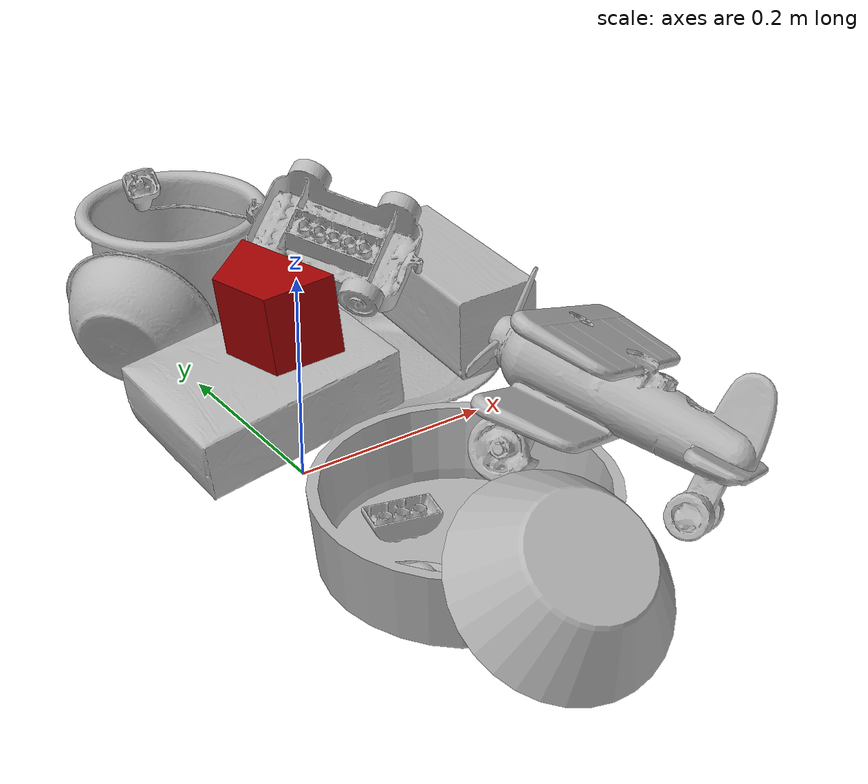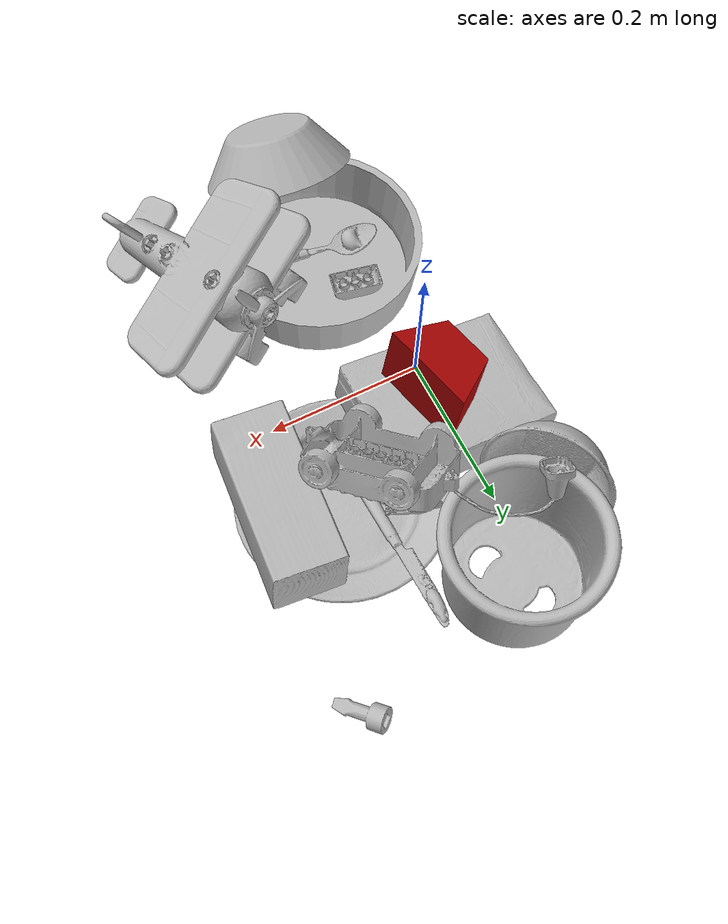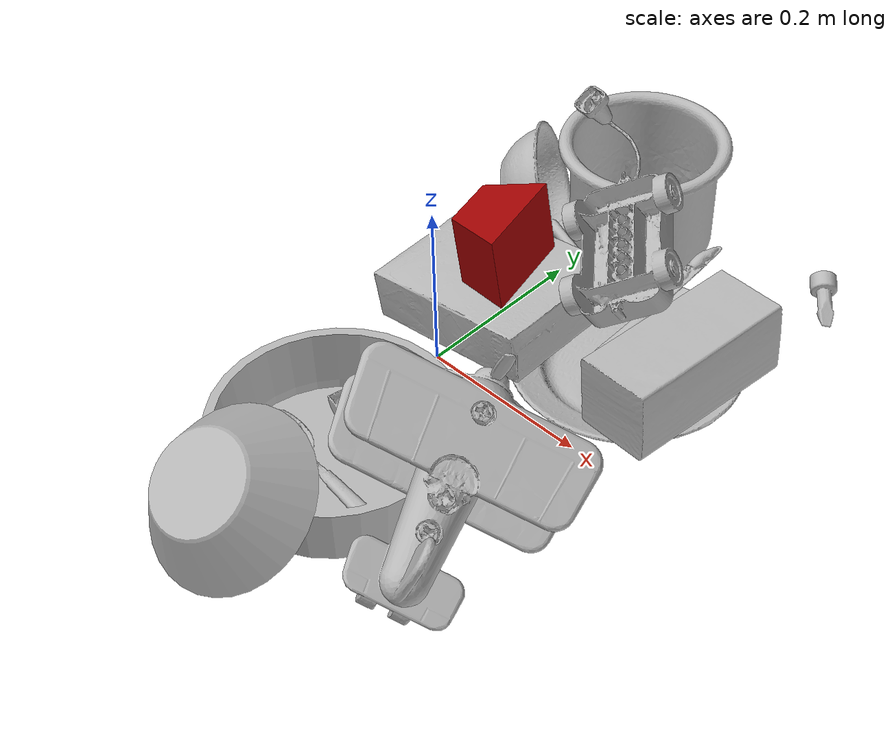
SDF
<sdf version="1.4">
  <world name="default">
    <light name="light1" type="point">
      <pose>0 0 1 0 0 0</pose>
      <diffuse>3 3 3 1</diffuse>
      <specular>3 3 3 1</specular>
    </light>
    <light name="light2" type="point">
      <pose>0 0.5 2 0 0 0</pose>
      <diffuse>1 1 1 1</diffuse>
      <specular>1 1 1 1</specular>
    </light>
    <light name="light3" type="point">
      <pose>0 0.5 2 0 0 0</pose>
      <diffuse>3 3 3 1</diffuse>
      <specular>3 3 3 1</specular>
    </light>
    <scene>
      <ambient>0.7 0.7 0.7</ambient>
    </scene>
    <model name="plate1">
      <link name="link_plate1">
        <collision name="default">
          <geometry>
            <mesh>
              <uri>model://plate/collision_meshes/collision.obj</uri>
              <scale>1.0 1.0 1.0</scale>
            </mesh>
          </geometry>
          <surface>
            <friction>
              <ode>
                <mu>0.5</mu>
                <mu2>0.5</mu2>
              </ode>
            </friction>
          <contact>
        <ode>
            <max_vel>0</max_vel>
            <min_depth>0.0001</min_depth>
            <kp>1e8</kp>
        </ode>
    </contact></surface>
        </collision>
        <visual name="default">
          <geometry>
            <mesh>
              <uri>model://plate/visual_meshes/visual.dae</uri>
              <scale>1.0 1.0 1.0</scale>
            </mesh>
          </geometry>
        </visual>
        <inertial>
          <mass>0.18013060092926025</mass>
          <pose>-0.0006044624606147408 0.0002782579977065325 -0.0010561981471255422 0.0022187543261248163 -0.003225499970721242 0.452618951787785</pose>
          <inertia>
            <ixx>0.00084265455</ixx>
            <iyy>0.000834595</iyy>
            <izz>0.0016481068</izz>
            <ixy>0</ixy>
            <ixz>0</ixz>
            <iyz>0</iyz>
          </inertia>
        </inertial>
      </link>
      <pose>0.1660972237586975 0.125486359000206 0.013763444498181343 -0.0001344536279673865 -0.0003907729702416121 2.2854279109614226</pose>
    </model>
    <model name="plate2">
      <link name="link_plate2">
        <collision name="default">
          <geometry>
            <mesh>
              <uri>model://pan_tefal/collision_meshes/collision.obj</uri>
              <scale>1.0 1.0 1.0</scale>
            </mesh>
          </geometry>
          <surface>
            <friction>
              <ode>
                <mu>0.5</mu>
                <mu2>0.5</mu2>
              </ode>
            </friction>
          <contact>
        <ode>
            <max_vel>0</max_vel>
            <min_depth>0.0001</min_depth>
            <kp>1e8</kp>
        </ode>
    </contact></surface>
        </collision>
        <visual name="default">
          <geometry>
            <mesh>
              <uri>model://pan_tefal/visual_meshes/visual.dae</uri>
              <scale>1.0 1.0 1.0</scale>
            </mesh>
          </geometry>
        </visual>
        <inertial>
          <mass>1.1554980278015137</mass>
          <pose>-0.00018001958960667253 3.279018710600212e-05 -0.008514934219419956 0.0008190268412404128 -0.0003301434555644904 -0.33185316474518306</pose>
          <inertia>
            <ixx>0.007976347</ixx>
            <iyy>0.008027771</iyy>
            <izz>0.014682918</izz>
            <ixy>0</ixy>
            <ixz>0</ixz>
            <iyz>0</iyz>
          </inertia>
        </inertial>
      </link>
      <pose>0.04431576281785965 -0.18776655197143555 0.03805017098784447 1.3725940797724604e-06 8.832647707417734e-08 3.015185771302217</pose>
    </model>
    <model name="bowl1">
      <link name="link_bowl1">
        <collision name="default">
          <geometry>
            <mesh>
              <uri>model://bowl/collision_meshes/collision.obj</uri>
              <scale>1.0 1.0 1.0</scale>
            </mesh>
          </geometry>
          <surface>
            <friction>
              <ode>
                <mu>0.5</mu>
                <mu2>0.5</mu2>
              </ode>
            </friction>
          <contact>
        <ode>
            <max_vel>0</max_vel>
            <min_depth>0.0001</min_depth>
            <kp>1e8</kp>
        </ode>
    </contact></surface>
        </collision>
        <visual name="default">
          <geometry>
            <mesh>
              <uri>model://bowl/visual_meshes/visual.dae</uri>
              <scale>1.0 1.0 1.0</scale>
            </mesh>
          </geometry>
        </visual>
        <inertial>
          <mass>0.08154366910457611</mass>
          <pose>0.0002044497523456812 -0.0010302083101123571 -0.0008042664267122746 -0.01576409235239578 0.014546819263349199 0.7140418673414882</pose>
          <inertia>
            <ixx>0.00018731231</ixx>
            <iyy>0.000183127</iyy>
            <izz>0.00031512365</izz>
            <ixy>0</ixy>
            <ixz>0</ixz>
            <iyz>0</iyz>
          </inertia>
        </inertial>
      </link>
      <pose>-0.05905826389789581 0.21809247136116028 0.07095139473676682 1.033989396782032 0.990876826787267 1.7667178621003692</pose>
    </model>
    <model name="bowl2">
      <link name="link_bowl2">
        <collision name="default">
          <geometry>
            <mesh>
              <uri>model://bowl_a/collision_meshes/collision.obj</uri>
              <scale>1.0 1.0 1.0</scale>
            </mesh>
          </geometry>
          <surface>
            <friction>
              <ode>
                <mu>0.5</mu>
                <mu2>0.5</mu2>
              </ode>
            </friction>
          <contact>
        <ode>
            <max_vel>0</max_vel>
            <min_depth>0.0001</min_depth>
            <kp>1e8</kp>
        </ode>
    </contact></surface>
        </collision>
        <visual name="default">
          <geometry>
            <mesh>
              <uri>model://bowl_a/visual_meshes/visual.dae</uri>
              <scale>1.0 1.0 1.0</scale>
            </mesh>
          </geometry>
        </visual>
        <inertial>
          <mass>0.4363987147808075</mass>
          <pose>0.0002786752884276211 4.73113359475974e-05 -0.0013765294570475817 -0.0009805318297205425 -0.0010938254473046036 -0.19123908587825994</pose>
          <inertia>
            <ixx>0.0012424473</ixx>
            <iyy>0.001250075</iyy>
            <izz>0.0022097398</izz>
            <ixy>0</ixy>
            <ixz>0</ixz>
            <iyz>0</iyz>
          </inertia>
        </inertial>
      </link>
      <pose>0.03825179114937782 -0.3359220325946808 0.08086366206407547 -2.5610647976428287 0.2135978903486632 -0.36604590438216433</pose>
    </model>
    <model name="silverware1">
      <link name="link_silverware1">
        <collision name="default">
          <geometry>
            <mesh>
              <uri>model://spoon/collision_meshes/collision.obj</uri>
              <scale>1.0 1.0 1.0</scale>
            </mesh>
          </geometry>
          <surface>
            <friction>
              <ode>
                <mu>0.5</mu>
                <mu2>0.5</mu2>
              </ode>
            </friction>
          <contact>
        <ode>
            <max_vel>0</max_vel>
            <min_depth>0.0001</min_depth>
            <kp>1e8</kp>
        </ode>
    </contact></surface>
        </collision>
        <visual name="default">
          <geometry>
            <mesh>
              <uri>model://spoon/visual_meshes/visual.dae</uri>
              <scale>1.0 1.0 1.0</scale>
            </mesh>
          </geometry>
        </visual>
        <inertial>
          <mass>0.034700214862823486</mass>
          <pose>-0.00552632100880146 -0.0016034168656915426 -0.0007271654903888702 0.03521477925438783 -0.03906582568380071 0.006150611591128785</pose>
          <inertia>
            <ixx>1.9300821e-06</ixx>
            <iyy>0.00013203312</iyy>
            <izz>0.00013298499</izz>
            <ixy>0</ixy>
            <ixz>0</ixz>
            <iyz>0</iyz>
          </inertia>
        </inertial>
      </link>
      <pose>0.05075623095035553 -0.2123868614435196 0.015923019498586655 0.0021523328981427736 0.023972384072251607 3.0017184214146644</pose>
    </model>
    <model name="box1">
      <link name="link_box1">
        <collision name="default">
          <geometry>
            <mesh>
              <uri>model://cracker_box/collision_meshes/collision.obj</uri>
              <scale>1.0 1.0 1.0</scale>
            </mesh>
          </geometry>
          <surface>
            <friction>
              <ode>
                <mu>0.5</mu>
                <mu2>0.5</mu2>
              </ode>
            </friction>
          <contact>
        <ode>
            <max_vel>0</max_vel>
            <min_depth>0.0001</min_depth>
            <kp>1e8</kp>
        </ode>
    </contact></surface>
        </collision>
        <visual name="default">
          <geometry>
            <mesh>
              <uri>model://cracker_box/visual_meshes/visual.dae</uri>
              <scale>1.0 1.0 1.0</scale>
            </mesh>
          </geometry>
        </visual>
        <inertial>
          <mass>1.831273078918457</mass>
          <pose>0.000946414191275835 0.00025434247800149024 -0.0017029533628374338 -0.0003162074786093215 -0.01110648680647863 0.0025467950006863548</pose>
          <inertia>
            <ixx>0.0046579414</ixx>
            <iyy>0.0076911766</iyy>
            <izz>0.010976015</izz>
            <ixy>0</ixy>
            <ixz>0</ixz>
            <iyz>0</iyz>
          </inertia>
        </inertial>
      </link>
      <pose>0.008237089961767197 0.0819646492600441 0.050272345542907715 3.105308724625198 0.1373737006869535 -3.1353124830319308</pose>
    </model>
    <model name="box2">
      <link name="link_box2">
        <collision name="default">
          <geometry>
            <mesh>
              <uri>model://wood_block/collision_meshes/collision.obj</uri>
              <scale>1.0 1.0 1.0</scale>
            </mesh>
          </geometry>
          <surface>
            <friction>
              <ode>
                <mu>0.5</mu>
                <mu2>0.5</mu2>
              </ode>
            </friction>
          <contact>
        <ode>
            <max_vel>0</max_vel>
            <min_depth>0.0001</min_depth>
            <kp>1e8</kp>
        </ode>
    </contact></surface>
        </collision>
        <visual name="default">
          <geometry>
            <mesh>
              <uri>model://wood_block/visual_meshes/visual.dae</uri>
              <scale>1.0 1.0 1.0</scale>
            </mesh>
          </geometry>
        </visual>
        <inertial>
          <mass>1.0038666725158691</mass>
          <pose>-5.813315510749817e-06 -0.000570809468626976 0.0002640858292579651 -0.05221020962952386 -0.005192696059900718 -0.006861377701075274</pose>
          <inertia>
            <ixx>0.0013433257</ixx>
            <iyy>0.0042435657</iyy>
            <izz>0.0042276927</izz>
            <ixy>0</ixy>
            <ixz>0</ixz>
            <iyz>0</iyz>
          </inertia>
        </inertial>
      </link>
      <pose>0.24539172649383545 0.11827103793621063 0.0715244933962822 1.523030725026377 -0.005302389314396118 1.494080553199859</pose>
    </model>
    <model name="cup1">
      <link name="link_cup1">
        <collision name="default">
          <geometry>
            <mesh>
              <uri>model://i_cups/collision_meshes/collision.obj</uri>
              <scale>2.0 2.0 2.0</scale>
            </mesh>
          </geometry>
          <surface>
            <friction>
              <ode>
                <mu>0.5</mu>
                <mu2>0.5</mu2>
              </ode>
            </friction>
          <contact>
        <ode>
            <max_vel>0</max_vel>
            <min_depth>0.0001</min_depth>
            <kp>1e8</kp>
        </ode>
    </contact></surface>
        </collision>
        <visual name="default">
          <geometry>
            <mesh>
              <uri>model://i_cups/visual_meshes/visual.dae</uri>
              <scale>2.0 2.0 2.0</scale>
            </mesh>
          </geometry>
        </visual>
        <inertial>
          <mass>0.6038269996643066</mass>
          <pose>0.00022479970357380807 0.0003359453985467553 -0.001715799910016358 -0.02898255198870416 -0.03987340808103542 -0.3459203892901821</pose>
          <inertia>
            <ixx>0.0033440301</ixx>
            <iyy>0.003373493</iyy>
            <izz>0.0037374943</izz>
            <ixy>0</ixy>
            <ixz>0</ixz>
            <iyz>0</iyz>
          </inertia>
        </inertial>
      </link>
      <pose>0.03426961973309517 0.3013480007648468 0.0755486786365509 0.0020850663882169664 -0.006233927156850174 -1.4527829066079294</pose>
    </model>
    <model name="silverware2">
      <link name="link_silverware2">
        <collision name="default">
          <geometry>
            <mesh>
              <uri>model://knife/collision_meshes/collision.obj</uri>
              <scale>1.0 1.0 1.0</scale>
            </mesh>
          </geometry>
          <surface>
            <friction>
              <ode>
                <mu>0.5</mu>
                <mu2>0.5</mu2>
              </ode>
            </friction>
          <contact>
        <ode>
            <max_vel>0</max_vel>
            <min_depth>0.0001</min_depth>
            <kp>1e8</kp>
        </ode>
    </contact></surface>
        </collision>
        <visual name="default">
          <geometry>
            <mesh>
              <uri>model://knife/visual_meshes/visual.dae</uri>
              <scale>1.0 1.0 1.0</scale>
            </mesh>
          </geometry>
        </visual>
        <inertial>
          <mass>0.01351180113852024</mass>
          <pose>-0.023785246536135674 0.0015275131445378065 5.062015407020226e-05 0.073058244240525 0.017248418380522417 -0.007409818685807072</pose>
          <inertia>
            <ixx>3.8351965e-07</ixx>
            <iyy>5.1910156e-05</iyy>
            <izz>5.2033673e-05</izz>
            <ixy>0</ixy>
            <ixz>0</ixz>
            <iyz>0</iyz>
          </inertia>
        </inertial>
      </link>
      <pose>0.1342620849609375 0.21641409397125244 0.02512235753238201 -3.14079809339376 -0.13690859087222557 1.584277319265834</pose>
    </model>
    <model name="silverware3">
      <link name="link_silverware3">
        <collision name="default">
          <geometry>
            <mesh>
              <uri>model://fork/collision_meshes/collision.obj</uri>
              <scale>1.0 1.0 1.0</scale>
            </mesh>
          </geometry>
          <surface>
            <friction>
              <ode>
                <mu>0.5</mu>
                <mu2>0.5</mu2>
              </ode>
            </friction>
          <contact>
        <ode>
            <max_vel>0</max_vel>
            <min_depth>0.0001</min_depth>
            <kp>1e8</kp>
        </ode>
    </contact></surface>
        </collision>
        <visual name="default">
          <geometry>
            <mesh>
              <uri>model://fork/visual_meshes/visual.dae</uri>
              <scale>1.0 1.0 1.0</scale>
            </mesh>
          </geometry>
        </visual>
        <inertial>
          <mass>0.030749449506402016</mass>
          <pose>-0.029570044949650764 0.0004658822435885668 0.00032188615296036005 -0.013551266353778695 -0.010977839115777554 0.014453902178384312</pose>
          <inertia>
            <ixx>1.0779423e-06</ixx>
            <iyy>8.0277954e-05</iyy>
            <izz>8.076011e-05</izz>
            <ixy>0</ixy>
            <ixz>0</ixz>
            <iyz>0</iyz>
          </inertia>
        </inertial>
      </link>
      <pose>0.04069317877292633 0.2000318169593811 0.029474839568138123 -1.2566289316781494 -0.09559113572196448 -0.392935301412849</pose>
    </model>
    <model name="toy1">
      <link name="link_toy1">
        <collision name="default">
          <geometry>
            <mesh>
              <uri>model://e_toy_airplane/collision_meshes/collision.obj</uri>
              <scale>1.0 1.0 1.0</scale>
            </mesh>
          </geometry>
          <surface>
            <friction>
              <ode>
                <mu>0.5</mu>
                <mu2>0.5</mu2>
              </ode>
            </friction>
          <contact>
        <ode>
            <max_vel>0</max_vel>
            <min_depth>0.0001</min_depth>
            <kp>1e8</kp>
        </ode>
    </contact></surface>
        </collision>
        <visual name="default">
          <geometry>
            <mesh>
              <uri>model://e_toy_airplane/visual_meshes/visual.dae</uri>
              <scale>1.0 1.0 1.0</scale>
            </mesh>
          </geometry>
        </visual>
        <inertial>
          <mass>0.01770107075572014</mass>
          <pose>0.00011740486661437899 -2.248296732432209e-05 -0.011187206022441387 0.005518513464699853 0.009228302242376646 0.15041570361631973</pose>
          <inertia>
            <ixx>5.4025695e-06</ixx>
            <iyy>5.3473045e-06</iyy>
            <izz>1.6236847e-06</izz>
            <ixy>0</ixy>
            <ixz>0</ixz>
            <iyz>0</iyz>
          </inertia>
        </inertial>
      </link>
      <pose>0.2621381878852844 0.3571460545063019 0.010808572173118591 -2.1451291593239317 1.1027843882127553 -2.939173017633788</pose>
    </model>
    <model name="toy2">
      <link name="link_toy2">
        <collision name="default">
          <geometry>
            <mesh>
              <uri>model://a_toy_airplane/collision_meshes/collision.obj</uri>
              <scale>1.0 1.0 1.0</scale>
            </mesh>
          </geometry>
          <surface>
            <friction>
              <ode>
                <mu>0.5</mu>
                <mu2>0.5</mu2>
              </ode>
            </friction>
          <contact>
        <ode>
            <max_vel>0</max_vel>
            <min_depth>0.0001</min_depth>
            <kp>1e8</kp>
        </ode>
    </contact></surface>
        </collision>
        <visual name="default">
          <geometry>
            <mesh>
              <uri>model://a_toy_airplane/visual_meshes/visual.dae</uri>
              <scale>1.0 1.0 1.0</scale>
            </mesh>
          </geometry>
        </visual>
        <inertial>
          <mass>1.6391528844833374</mass>
          <pose>0.02516508661210537 -0.003707319963723421 -0.0011962438002228737 -0.012016999892079352 -0.14663507149587088 0.004149061575203148</pose>
          <inertia>
            <ixx>0.0059525487</ixx>
            <iyy>0.008674072</iyy>
            <izz>0.01015627</izz>
            <ixy>0</ixy>
            <ixz>0</ixz>
            <iyz>0</iyz>
          </inertia>
        </inertial>
      </link>
      <pose>0.20604483783245087 -0.19625267386436462 0.10246500372886658 0.407452872049975 -0.06992139133578607 2.0384502934023745</pose>
    </model>
    <model name="toy3">
      <link name="link_toy3">
        <collision name="default">
          <geometry>
            <mesh>
              <uri>model://g_lego_duplo/collision_meshes/collision.obj</uri>
              <scale>1.0 1.0 1.0</scale>
            </mesh>
          </geometry>
          <surface>
            <friction>
              <ode>
                <mu>0.5</mu>
                <mu2>0.5</mu2>
              </ode>
            </friction>
          <contact>
        <ode>
            <max_vel>0</max_vel>
            <min_depth>0.0001</min_depth>
            <kp>1e8</kp>
        </ode>
    </contact></surface>
        </collision>
        <visual name="default">
          <geometry>
            <mesh>
              <uri>model://g_lego_duplo/visual_meshes/visual.dae</uri>
              <scale>1.0 1.0 1.0</scale>
            </mesh>
          </geometry>
        </visual>
        <inertial>
          <mass>0.5092288255691528</mass>
          <pose>-0.05004768446087837 0.0017554641235619783 0.0038806775119155645 0.010963010010498962 0.03810823590924119 -0.09653024292159736</pose>
          <inertia>
            <ixx>0.00073787844</ixx>
            <iyy>0.002230844</iyy>
            <izz>0.002790868</izz>
            <ixy>0</ixy>
            <ixz>0</ixz>
            <iyz>0</iyz>
          </inertia>
        </inertial>
      </link>
      <pose>0.09292687475681305 0.19267188012599945 0.15642935037612915 2.6172268887722447 -0.261780535031747 2.2839304145954293</pose>
    </model>
    <model name="toy4">
      <link name="link_toy4">
        <collision name="default">
          <geometry>
            <mesh>
              <uri>model://a_lego_duplo/collision_meshes/collision.obj</uri>
              <scale>1.0 1.0 1.0</scale>
            </mesh>
          </geometry>
          <surface>
            <friction>
              <ode>
                <mu>0.5</mu>
                <mu2>0.5</mu2>
              </ode>
            </friction>
          <contact>
        <ode>
            <max_vel>0</max_vel>
            <min_depth>0.0001</min_depth>
            <kp>1e8</kp>
        </ode>
    </contact></surface>
        </collision>
        <visual name="default">
          <geometry>
            <mesh>
              <uri>model://a_lego_duplo/visual_meshes/visual.dae</uri>
              <scale>1.0 1.0 1.0</scale>
            </mesh>
          </geometry>
        </visual>
        <inertial>
          <mass>0.03161923587322235</mass>
          <pose>-0.00011337598698446527 0.00018517524586059153 0.00036926084430888295 -0.014116977368405541 -0.00012565500284871778 6.143069663272407e-05</pose>
          <inertia>
            <ixx>4.0538393e-06</ixx>
            <iyy>9.081488e-06</iyy>
            <izz>1.1249442e-05</izz>
            <ixy>0</ixy>
            <ixz>0</ixz>
            <iyz>0</iyz>
          </inertia>
        </inertial>
      </link>
      <pose>0.01635110192000866 -0.13569311797618866 0.019355174154043198 3.1322787003483668 -0.020651215704318493 2.918776351398676</pose>
    </model>
    <model name="toy5">
      <link name="link_toy5">
        <collision name="default">
          <geometry>
            <mesh>
              <uri>model://prism/collision_meshes/collision.obj</uri>
              <scale>1.0 1.0 1.0</scale>
            </mesh>
          </geometry>
          <surface>
            <friction>
              <ode>
                <mu>0.5</mu>
                <mu2>0.5</mu2>
              </ode>
            </friction>
          <contact>
        <ode>
            <max_vel>0</max_vel>
            <min_depth>0.0001</min_depth>
            <kp>1e8</kp>
        </ode>
    </contact></surface>
        </collision>
        <visual name="default">
          <geometry>
            <mesh>
              <uri>model://prism/visual_meshes/visual.dae</uri>
              <scale>1.0 1.0 1.0</scale>
            </mesh>
          </geometry>
        </visual>
        <inertial>
          <mass>0.5650969743728638</mass>
          <pose>-9.85359656624496e-05 -4.96157269935793e-07 -0.0033869100734591484 0.0 0.006559179369129768 0.0</pose>
          <inertia>
            <ixx>0.00050999306</ixx>
            <iyy>0.00061633316</iyy>
            <izz>0.00075493456</izz>
            <ixy>0</ixy>
            <ixz>0</ixz>
            <iyz>0</iyz>
          </inertia>
        </inertial>
      </link>
      <pose>0.01697828620672226 0.07979995757341385 0.12995344400405884 1.7147000565209596 -0.009098670472908911 -1.3242140350427254</pose>
    </model>
  <physics type="ode">
      <max_contacts>50</max_contacts>
      <ode>
        <solver>
          <type>quick</type>
          <iters>75</iters>
        </solver>
        <constraints>
          <contact_max_correcting_vel>0</contact_max_correcting_vel>
          <contact_surface_layer>0</contact_surface_layer>
        </constraints>
      </ode>
    </physics></world>
</sdf>
